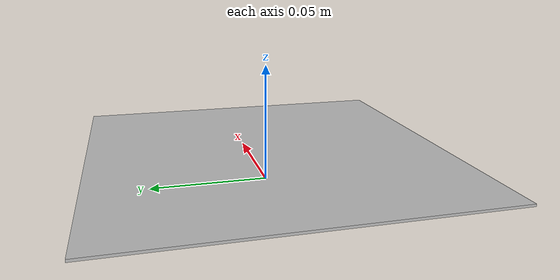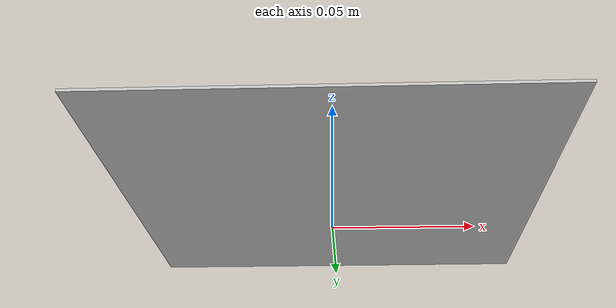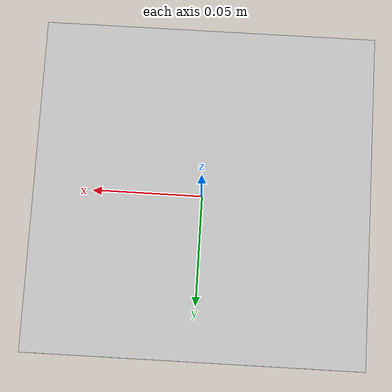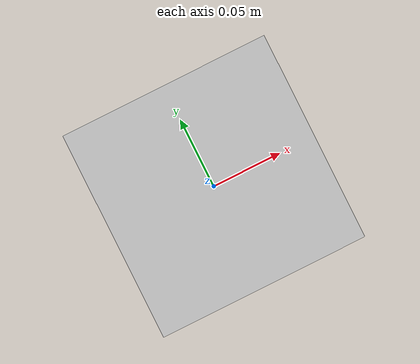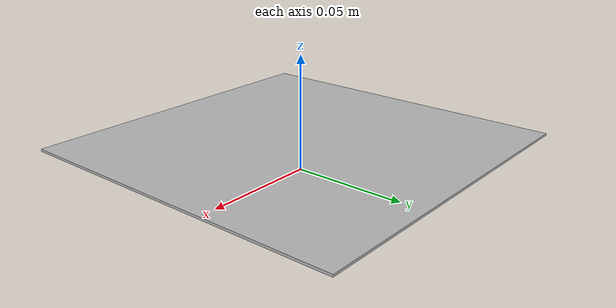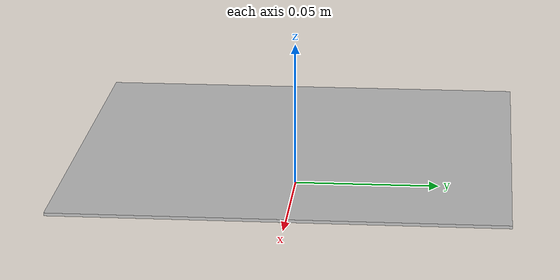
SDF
<?xml version="1.0" ?>
<sdf version="1.5">
  <model name="aruco_marker">
    <link name="link">
      <pose>0 0 0.0125 0 0 0</pose>

      <visual name="visual">
        <pose>0 0 0 0 0 0</pose>
        <geometry>
          <box>
            <size>0.15 0.15 0.001</size>
          </box>
        </geometry>
        <material>
          <script>
            <uri>model://aruco_marker/materials/scripts</uri>
            <uri>model://aruco_marker/materials/textures</uri>
            <name>acuco/material</name>
          </script>
        </material>
      </visual>

      <collision name="collision">
        <pose>0 0 0 0 0 0</pose>
        <geometry>
          <box>
            <size>0.15 0.15 0.001</size>
          </box>
        </geometry>
        <material>
          <script>
            <uri>model://aruco_marker/materials/scripts</uri>
            <uri>model://aruco_marker/materials/textures</uri>
            <name>acuco/material</name>
          </script>
        </material>
      </collision>

    </link>
  </model>
</sdf>
